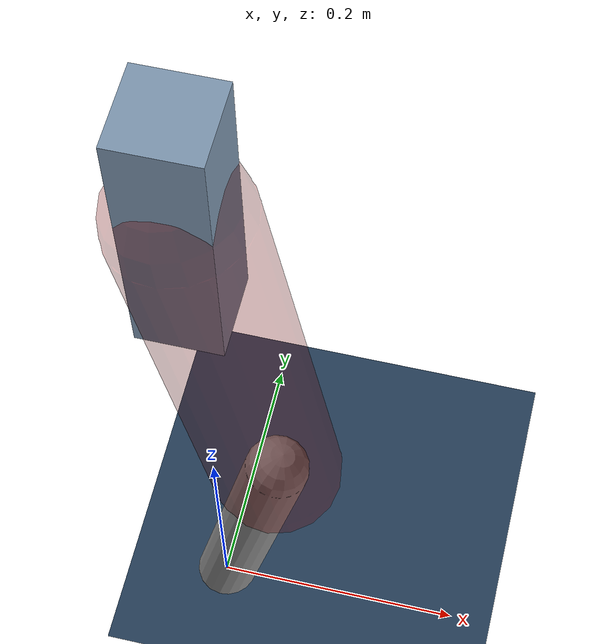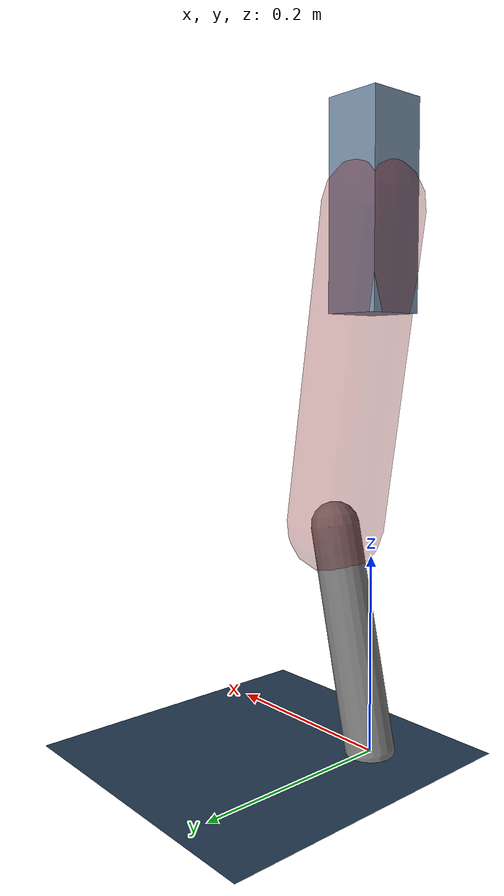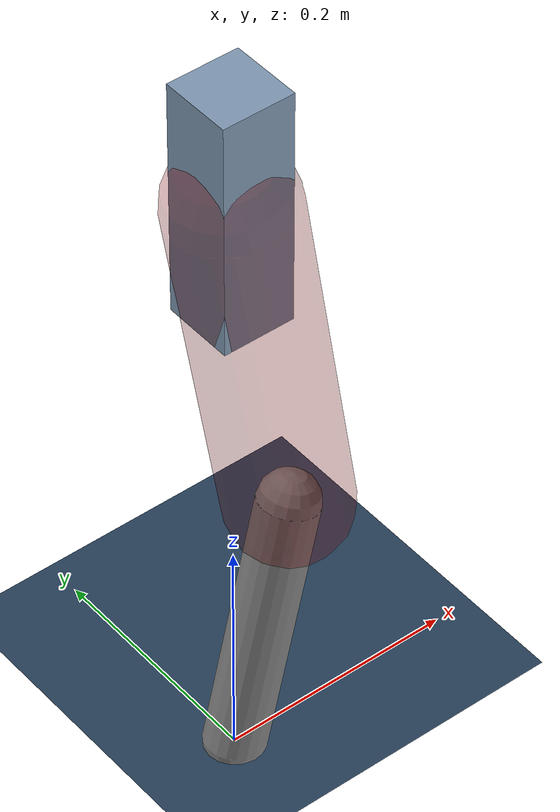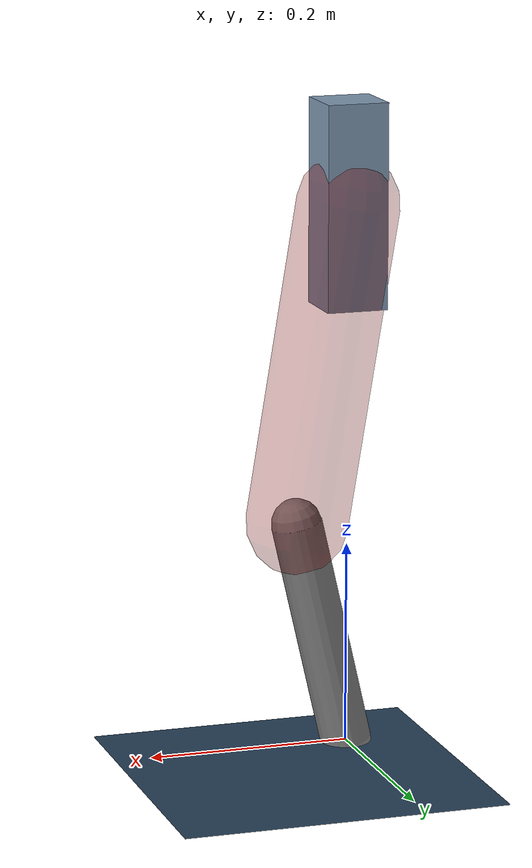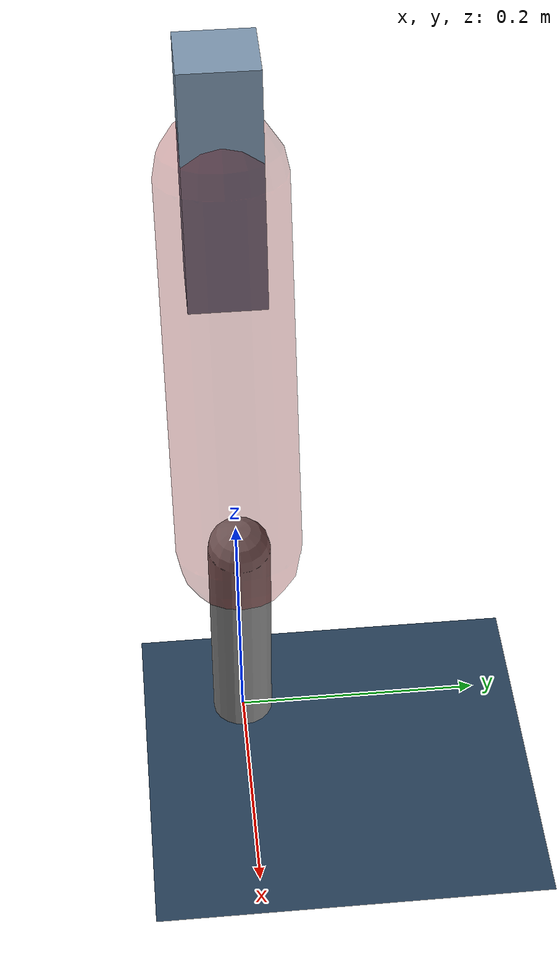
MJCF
<mujoco model="Hopper2D">
	<compiler inertiafromgeom="true" angle="radian" />
	<option timestep="0.001" integrator="implicit" cone="elliptic" solver="Newton" tolerance="1e-10" />

	<default>
		<geom contype="1" conaffinity="1" condim="3" friction="2 0.005 0.0001" solref="0.005 1" />
		<joint limited="true" damping="0.1" />
	</default>

	<asset>
		<texture name="skybox" type="skybox" builtin="gradient" rgb1=".4 .6 .8" rgb2="0 0 0" width="800" height="800" />
		<texture name="grid" type="2d" builtin="checker" rgb1=".1 .2 .3" rgb2=".2 .3 .4" width="300" height="300" mark="edge" markrgb=".2 .3 .4" />
		<material name="ground" texture="grid" texrepeat="1 1" texuniform="true" reflectance="0.1" />
		<material name="leg" rgba="0.5 0.6 0.7 1" />
	</asset>

	<worldbody>

		<geom name="floor" type="plane" size="5 5 0.25" material="ground" />

		<light directional="false" diffuse="0.8 0.8 0.8" specular="0.3 0.3 0.3" pos="0 0 2" dir="0 0 -1" />
		<light mode="targetbodycom" target="base" directional="false" diffuse="0.8 0.8 0.8" specular="0.3 0.3 0.3" pos="0 0 2" dir="0 0 -1" />

		<camera name="fixed" pos="0 -2 1" xyaxes="1 0 0 0 0 1" />
		<camera name="tracking" mode="trackcom" pos="0 -3 1" />

		<body name="root" pos="0 0 0.5369787770704169">
			<joint name="slide_x" type="slide" axis="1 0 0" range="-100 100" />
			<joint name="slide_z" type="slide" axis="0 0 1" range="0 10" />

			<body name="base" pos="0 0 0">
				<geom name="torso" type="box" size="0.03 0.03 0.1" mass="2.973" material="leg" />

				<body name="link1" pos="0 0 0" euler="0 1.4080392817401215 0">
					<joint type="hinge" axis="0 -1 0" pos="0 0 0" name="hinge1" limited="true" range="-3.14 3.14" stiffness="0" damping="0.1" />
					<geom name="thigh" type="capsule" fromto="0 0 0 0.31701044791627436 0 0" size="0.05" rgba="0.5 0 0 0.3" mass="1.0350292541655681" />

					<body name="link2" pos="0.31701044791627436 0 0" euler="0 0.38802824840994377 0">
						<joint type="hinge" axis="0 -1 0" pos="0 0 0" name="hinge2" limited="true" range="-3.14 3.14" stiffness="0" damping="0.1" />
						<geom name="shank" type="capsule" fromto="0 0 0 0.22996832915414245 0 0" size="0.025" mass="0.42597466332331396" />

					</body>
				</body>
			</body>
		</body>
	</worldbody>

	<actuator>
		<motor name="torque1" joint="hinge1" ctrlrange="-76.78784937340836 76.78784937340836" ctrllimited="true" gear="1" />
		<motor name="torque2" joint="hinge2" ctrlrange="-164.1921191967109 164.1921191967109" ctrllimited="true" gear="1" />
	</actuator>
</mujoco>
